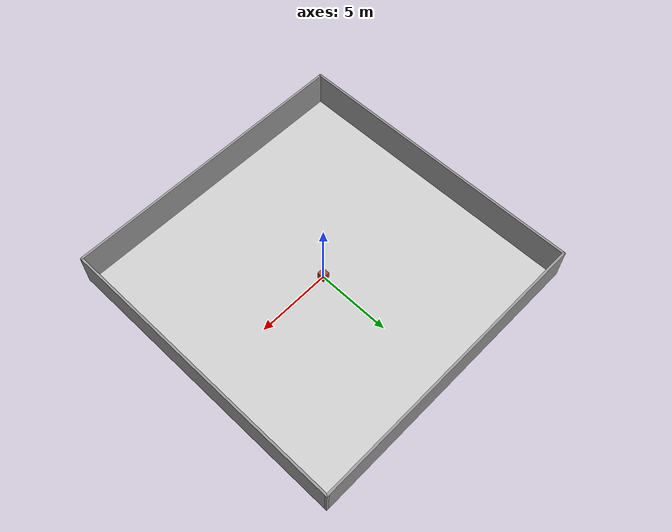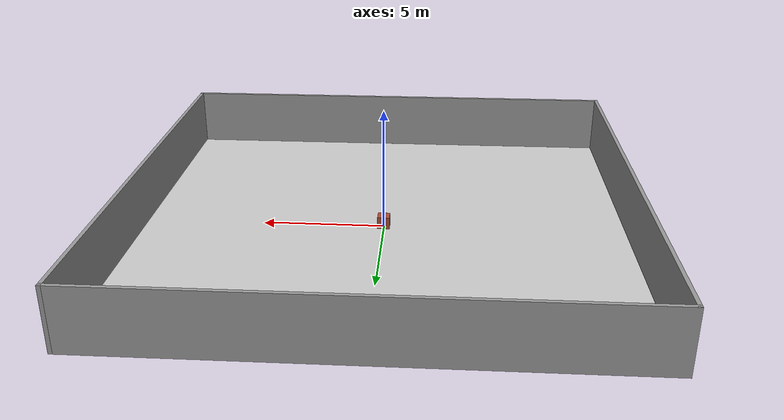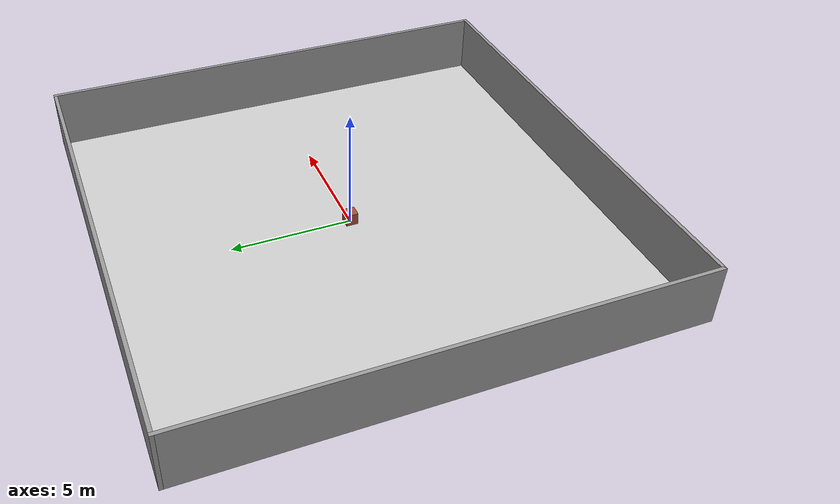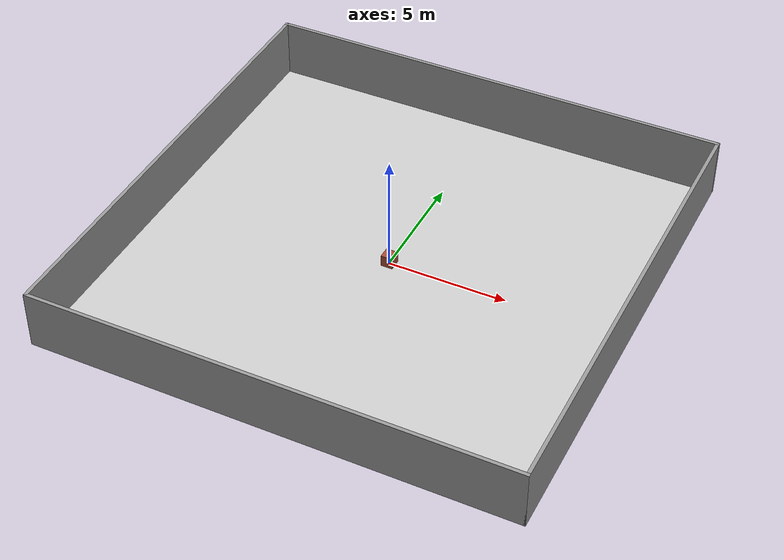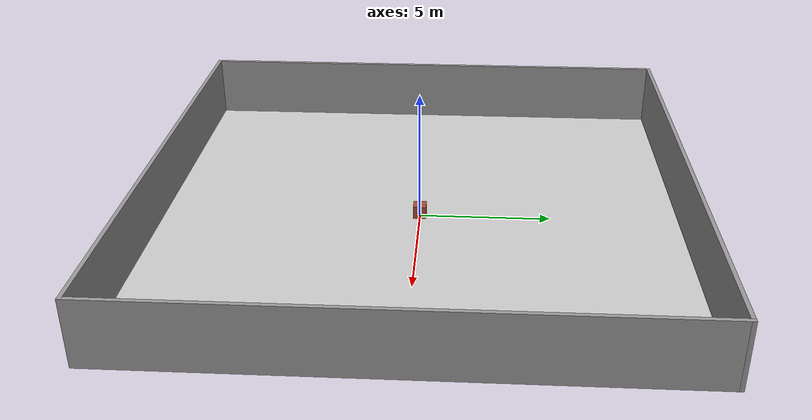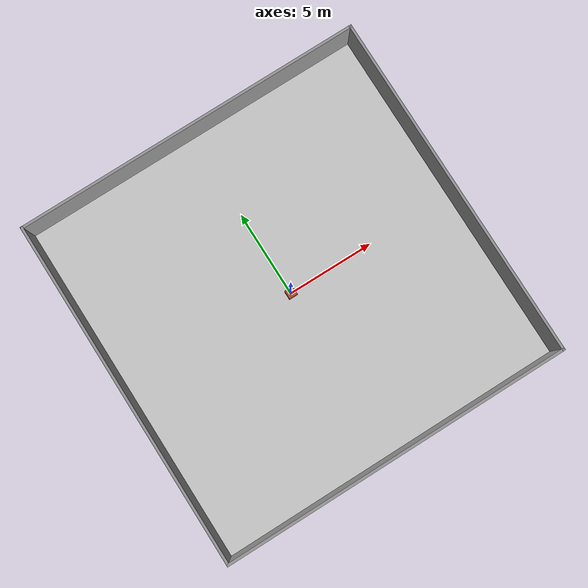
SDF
<?xml version="1.0" ?>
<sdf version="1.4">
    <world name="default">
        <include>
            <uri>model://UT_ground_plane</uri>
        </include>
        <include>
            <uri>model://sun</uri>
        </include>
        <include>
            <uri>model://my_wall</uri>
            <name>my_wall</name>
            <pose>0 0 0 0 0 0 </pose>
        </include>
        <include>
            <uri>model://my_cube</uri>
            <static>true</static>
            <size>1 1 1</size>
            <name>my_cube</name>
            <pose>0 0 0.25 0 0 0 </pose>
        </include>
    </world>
</sdf>

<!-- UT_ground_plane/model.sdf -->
<sdf version="1.4">
   <model name="my_ground_plane">
      <static>true</static>
      <link name="world">
         <collision name="collision">
            <geometry>
               <plane>
                  <normal>0 0 1</normal>
                  <size>20 20</size>
               </plane>
            </geometry>
            <surface>
               <friction>
                  <ode>
                     <mu>100</mu>
                     <mu2>50</mu2>
                  </ode>
               </friction>
            </surface>
         </collision>
         <visual name="visual">
            <cast_shadows>false</cast_shadows>
            <geometry>
               <plane>
                  <normal>0 0 1</normal>
                  <size>20 20</size>
               </plane>
            </geometry>
            <material>
               <script>
                  <uri>model://UT_ground_plane/materials/scripts</uri>
                  <uri>model://UT_ground_plane/materials/textures/</uri>
                  <name>MyGroundPlane/Image</name>
               </script>
            </material>
         </visual>
      </link>
   </model>
</sdf>

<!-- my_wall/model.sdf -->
<sdf version='1.6'>
  <model name='my_wall'>
    <pose frame=''>0 0 0 0 -0 0</pose>
    <link name='Wall_0'>
      <collision name='Wall_0_Collision'>
        <geometry>
          <box>
            <size>20.15 0.15 2.5</size>
          </box>
        </geometry>
        <pose frame=''>0 0 1.25 0 -0 0</pose>
      </collision>
      <visual name='Wall_0_Visual'>
        <pose frame=''>0 0 1.25 0 -0 0</pose>
        <geometry>
          <box>
            <size>20.15 0.15 2.5</size>
          </box>
        </geometry>
        <material>
          <script>
            <uri>file://media/materials/scripts/gazebo.material</uri>
            <name>Gazebo/Grey</name>
          </script>
          <ambient>1 1 1 1</ambient>
        </material>
        <meta>
          <layer>0</layer>
        </meta>
      </visual>
      <pose frame=''>0 -10.0 0 0 -0 0</pose>
    </link>
    <link name='Wall_1'>
      <collision name='Wall_1_Collision'>
        <geometry>
          <box>
            <size>20.15 0.15 2.5</size>
          </box>
        </geometry>
        <pose frame=''>0 0 1.25 0 -0 0</pose>
      </collision>
      <visual name='Wall_1_Visual'>
        <pose frame=''>0 0 1.25 0 -0 0</pose>
        <geometry>
          <box>
            <size>20.15 0.15 2.5</size>
          </box>
        </geometry>
        <material>
          <script>
            <uri>file://media/materials/scripts/gazebo.material</uri>
            <name>Gazebo/Grey</name>
          </script>
          <ambient>1 1 1 1</ambient>
        </material>
        <meta>
          <layer>0</layer>
        </meta>
      </visual>
      <pose frame=''>10.0 0 0 0 -0 1.5708</pose>
    </link>
    <link name='Wall_2'>
      <collision name='Wall_2_Collision'>
        <geometry>
          <box>
            <size>20.15 0.15 2.5</size>
          </box>
        </geometry>
        <pose frame=''>0 0 1.25 0 -0 0</pose>
      </collision>
      <visual name='Wall_2_Visual'>
        <pose frame=''>0 0 1.25 0 -0 0</pose>
        <geometry>
          <box>
            <size>20.15 0.15 2.5</size>
          </box>
        </geometry>
        <material>
          <script>
            <uri>file://media/materials/scripts/gazebo.material</uri>
            <name>Gazebo/Grey</name>
          </script>
          <ambient>1 1 1 1</ambient>
        </material>
        <meta>
          <layer>0</layer>
        </meta>
      </visual>
      <pose frame=''>0 10.0 0 0 -0 3.14159</pose>
    </link>
    <link name='Wall_3'>
      <collision name='Wall_3_Collision'>
        <geometry>
          <box>
            <size>20.15 0.15 2.5</size>
          </box>
        </geometry>
        <pose frame=''>0 0 1.25 0 -0 0</pose>
      </collision>
      <visual name='Wall_3_Visual'>
        <pose frame=''>0 0 1.25 0 -0 0</pose>
        <geometry>
          <box>
            <size>20.15 0.15 2.5</size>
          </box>
        </geometry>
        <material>
          <script>
            <uri>file://media/materials/scripts/gazebo.material</uri>
            <name>Gazebo/Grey</name>
          </script>
          <ambient>1 1 1 1</ambient>
        </material>
        <meta>
          <layer>0</layer>
        </meta>
      </visual>
      <pose frame=''>-10.0 0 0 0 -0 -1.5708</pose>
    </link>
    <static>1</static>
  </model>
</sdf>

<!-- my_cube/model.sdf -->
<sdf version='1.6'>
  <model name='my_cube'>
    <link name='box_link'>
      <inertial>
        <mass>1</mass>
        <inertia>
          <ixx>0.166667</ixx>
          <ixy>0</ixy>
          <ixz>0</ixz>
          <iyy>0.166667</iyy>
          <iyz>0</iyz>
          <izz>0.166667</izz>
        </inertia>
        <pose frame=''>0 0 0 0 -0 0</pose>
      </inertial>
      <pose frame=''>0 0 0 0 -0 0</pose>
      <gravity>1</gravity>
      <self_collide>0</self_collide>
      <kinematic>0</kinematic>
      <enable_wind>0</enable_wind>
      <visual name='visual'>
        <pose frame=''>0 0 0 0 -0 0</pose>
        <geometry>
          <box>
            <size>0.5 0.5 0.5</size>
          </box>
        </geometry>
        <material>
          <lighting>1</lighting>
          <script>
            <uri>file://media/materials/scripts/gazebo.material</uri>
            <name>Gazebo/Bricks</name>
          </script>
          <shader type='vertex'>
            <normal_map>__default__</normal_map>
          </shader>
          <ambient>1 1 1 1</ambient>
          <diffuse>1 1 1 1</diffuse>
          <specular>0.2 0.2 0.2 1</specular>
          <emissive>0 0 0 1</emissive>
        </material>
        <transparency>0</transparency>
        <cast_shadows>1</cast_shadows>
      </visual>
      <collision name='collision'>
        <laser_retro>0</laser_retro>
        <max_contacts>10</max_contacts>
        <pose frame=''>0 0 0 0 -0 0</pose>
        <geometry>
          <box>
            <size>0.5 0.5 0.495</size>
          </box>
        </geometry>
        <surface>
          <friction>
            <ode>
              <mu>1</mu>
              <mu2>1</mu2>
              <fdir1>0 0 0</fdir1>
              <slip1>0</slip1>
              <slip2>0</slip2>
            </ode>
            <torsional>
              <coefficient>1</coefficient>
              <patch_radius>0</patch_radius>
              <surface_radius>0</surface_radius>
              <use_patch_radius>1</use_patch_radius>
              <ode>
                <slip>0</slip>
              </ode>
            </torsional>
          </friction>
          <bounce>
            <restitution_coefficient>0</restitution_coefficient>
            <threshold>1e+06</threshold>
          </bounce>
          <contact>
            <collide_without_contact>0</collide_without_contact>
            <collide_without_contact_bitmask>1</collide_without_contact_bitmask>
            <collide_bitmask>1</collide_bitmask>
            <ode>
              <soft_cfm>0</soft_cfm>
              <soft_erp>0.2</soft_erp>
              <kp>1e+13</kp>
              <kd>1</kd>
              <max_vel>0.01</max_vel>
              <min_depth>0</min_depth>
            </ode>
            <bullet>
              <split_impulse>1</split_impulse>
              <split_impulse_penetration_threshold>-0.01</split_impulse_penetration_threshold>
              <soft_cfm>0</soft_cfm>
              <soft_erp>0.2</soft_erp>
              <kp>1e+13</kp>
              <kd>1</kd>
            </bullet>
          </contact>
        </surface>
      </collision>
    </link>
    <static>0</static>
    <allow_auto_disable>1</allow_auto_disable>
  </model>
</sdf>
